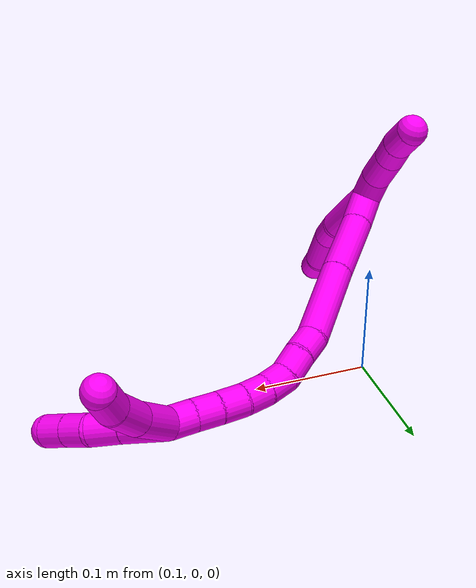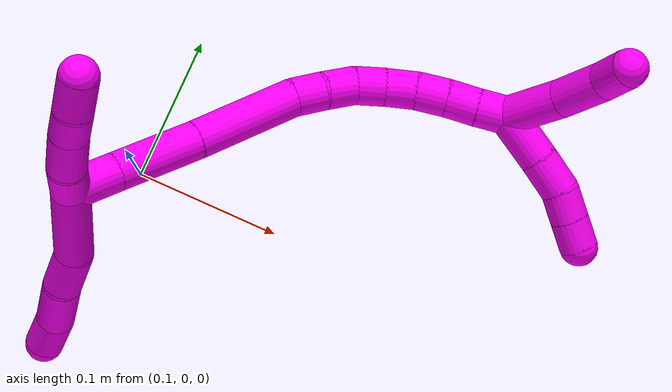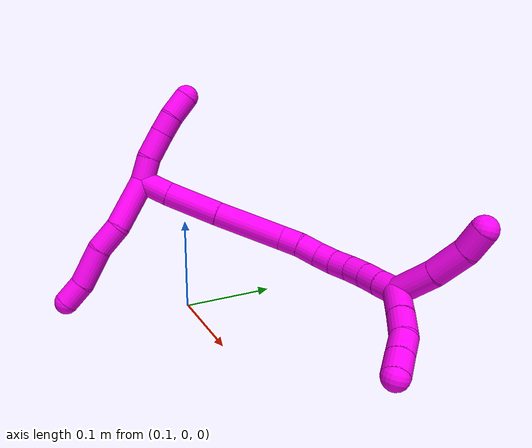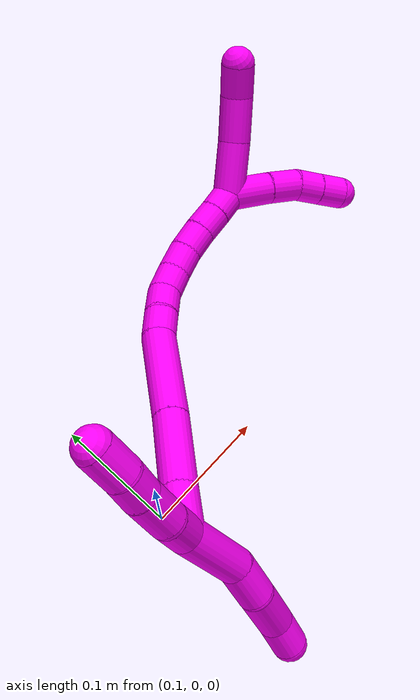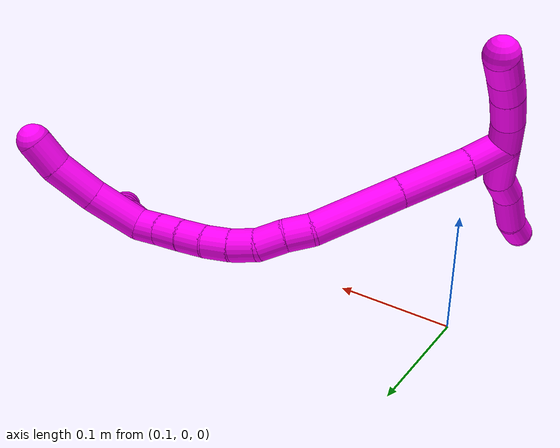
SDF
<sdf version="1.7">
 <world name="default">
  <model name="10">
   <static>0</static>
   <link name="10">
    <collision name="collision-cylinder-e_1_2_8">
     <pose>0.003382 -0.008162 -0.02535 2.8301 0.12632 0.765802</pose>
     <geometry><cylinder><radius>0.0125</radius><length>0.053692</length></cylinder></geometry>
     <surface>
      <friction><ode><mu>1.16</mu><mu2>1.16</mu2><slip1>0</slip1><slip2>0</slip2></ode></friction>
      <contact><ode><kp>1e+06</kp><kd>1</kd><max_vel>0</max_vel><min_depth>0.001</min_depth></ode></contact>
     </surface>
    </collision>
    <visual name="visual-cylinder-e_1_2_8">
     <pose>0.003382 -0.008162 -0.02535 2.8301 0.12632 0.765802</pose>
     <geometry><cylinder><radius>0.0125</radius><length>0.053692</length></cylinder></geometry>
     <material><ambient>1 0 0.964706 1</ambient></material>
    </visual>
    <collision name="collision-cylinder-e_2_8_9">
     <pose>0.004673 -0.022541 -0.063942 2.70263 -0.141992 -0.617229</pose>
     <geometry><cylinder><radius>0.0125</radius><length>0.029554</length></cylinder></geometry>
     <surface>
      <friction><ode><mu>1.16</mu><mu2>1.16</mu2><slip1>0</slip1><slip2>0</slip2></ode></friction>
      <contact><ode><kp>1e+06</kp><kd>1</kd><max_vel>0</max_vel><min_depth>0.001</min_depth></ode></contact>
     </surface>
    </collision>
    <visual name="visual-cylinder-e_2_8_9">
     <pose>0.004673 -0.022541 -0.063942 2.70263 -0.141992 -0.617229</pose>
     <geometry><cylinder><radius>0.0125</radius><length>0.029554</length></cylinder></geometry>
     <material><ambient>1 0 0.964706 1</ambient></material>
    </visual>
    <collision name="collision-cylinder-e_3_9_10">
     <pose>0.00026 -0.032813 -0.097231 2.94201 -0.11305 -1.02879</pose>
     <geometry><cylinder><radius>0.0125</radius><length>0.041171</length></cylinder></geometry>
     <surface>
      <friction><ode><mu>1.16</mu><mu2>1.16</mu2><slip1>0</slip1><slip2>0</slip2></ode></friction>
      <contact><ode><kp>1e+06</kp><kd>1</kd><max_vel>0</max_vel><min_depth>0.001</min_depth></ode></contact>
     </surface>
    </collision>
    <visual name="visual-cylinder-e_3_9_10">
     <pose>0.00026 -0.032813 -0.097231 2.94201 -0.11305 -1.02879</pose>
     <geometry><cylinder><radius>0.0125</radius><length>0.041171</length></cylinder></geometry>
     <material><ambient>1 0 0.964706 1</ambient></material>
    </visual>
    <collision name="collision-cylinder-e_4_10_6">
     <pose>-0.004373 -0.042216 -0.128668 2.70258 -0.181634 -0.775086</pose>
     <geometry><cylinder><radius>0.0125</radius><length>0.025584</length></cylinder></geometry>
     <surface>
      <friction><ode><mu>1.16</mu><mu2>1.16</mu2><slip1>0</slip1><slip2>0</slip2></ode></friction>
      <contact><ode><kp>1e+06</kp><kd>1</kd><max_vel>0</max_vel><min_depth>0.001</min_depth></ode></contact>
     </surface>
    </collision>
    <visual name="visual-cylinder-e_4_10_6">
     <pose>-0.004373 -0.042216 -0.128668 2.70258 -0.181634 -0.775086</pose>
     <geometry><cylinder><radius>0.0125</radius><length>0.025584</length></cylinder></geometry>
     <material><ambient>1 0 0.964706 1</ambient></material>
    </visual>
    <collision name="collision-cylinder-e_1_2_11">
     <pose>-0.000382 0.000632 0.012716 -0.049642 -0.029959 0.000744</pose>
     <geometry><cylinder><radius>0.0125</radius><length>0.025475</length></cylinder></geometry>
     <surface>
      <friction><ode><mu>1.16</mu><mu2>1.16</mu2><slip1>0</slip1><slip2>0</slip2></ode></friction>
      <contact><ode><kp>1e+06</kp><kd>1</kd><max_vel>0</max_vel><min_depth>0.001</min_depth></ode></contact>
     </surface>
    </collision>
    <visual name="visual-cylinder-e_1_2_11">
     <pose>-0.000382 0.000632 0.012716 -0.049642 -0.029959 0.000744</pose>
     <geometry><cylinder><radius>0.0125</radius><length>0.025475</length></cylinder></geometry>
     <material><ambient>1 0 0.964706 1</ambient></material>
    </visual>
    <collision name="collision-cylinder-e_2_11_12">
     <pose>-0.000736 0.005071 0.039483 -0.26466 0.001895 -0.000252</pose>
     <geometry><cylinder><radius>0.0125</radius><length>0.029114</length></cylinder></geometry>
     <surface>
      <friction><ode><mu>1.16</mu><mu2>1.16</mu2><slip1>0</slip1><slip2>0</slip2></ode></friction>
      <contact><ode><kp>1e+06</kp><kd>1</kd><max_vel>0</max_vel><min_depth>0.001</min_depth></ode></contact>
     </surface>
    </collision>
    <visual name="visual-cylinder-e_2_11_12">
     <pose>-0.000736 0.005071 0.039483 -0.26466 0.001895 -0.000252</pose>
     <geometry><cylinder><radius>0.0125</radius><length>0.029114</length></cylinder></geometry>
     <material><ambient>1 0 0.964706 1</ambient></material>
    </visual>
    <collision name="collision-cylinder-e_3_12_13">
     <pose>2.5e-05 0.011674 0.063186 -0.281796 0.072799 -0.01033</pose>
     <geometry><cylinder><radius>0.0125</radius><length>0.020152</length></cylinder></geometry>
     <surface>
      <friction><ode><mu>1.16</mu><mu2>1.16</mu2><slip1>0</slip1><slip2>0</slip2></ode></friction>
      <contact><ode><kp>1e+06</kp><kd>1</kd><max_vel>0</max_vel><min_depth>0.001</min_depth></ode></contact>
     </surface>
    </collision>
    <visual name="visual-cylinder-e_3_12_13">
     <pose>2.5e-05 0.011674 0.063186 -0.281796 0.072799 -0.01033</pose>
     <geometry><cylinder><radius>0.0125</radius><length>0.020152</length></cylinder></geometry>
     <material><ambient>1 0 0.964706 1</ambient></material>
    </visual>
    <collision name="collision-cylinder-e_4_13_5">
     <pose>0.000775 0.019711 0.084329 -0.428034 0.001369 -0.000298</pose>
     <geometry><cylinder><radius>0.0125</radius><length>0.025258</length></cylinder></geometry>
     <surface>
      <friction><ode><mu>1.16</mu><mu2>1.16</mu2><slip1>0</slip1><slip2>0</slip2></ode></friction>
      <contact><ode><kp>1e+06</kp><kd>1</kd><max_vel>0</max_vel><min_depth>0.001</min_depth></ode></contact>
     </surface>
    </collision>
    <visual name="visual-cylinder-e_4_13_5">
     <pose>0.000775 0.019711 0.084329 -0.428034 0.001369 -0.000298</pose>
     <geometry><cylinder><radius>0.0125</radius><length>0.025258</length></cylinder></geometry>
     <material><ambient>1 0 0.964706 1</ambient></material>
    </visual>
    <collision name="collision-cylinder-e_1_2_14">
     <pose>0.008115 0.012909 -0.002928 -1.79383 0.549953 -0.679179</pose>
     <geometry><cylinder><radius>0.0125</radius><length>0.031052</length></cylinder></geometry>
     <surface>
      <friction><ode><mu>1.16</mu><mu2>1.16</mu2><slip1>0</slip1><slip2>0</slip2></ode></friction>
      <contact><ode><kp>1e+06</kp><kd>1</kd><max_vel>0</max_vel><min_depth>0.001</min_depth></ode></contact>
     </surface>
    </collision>
    <visual name="visual-cylinder-e_1_2_14">
     <pose>0.008115 0.012909 -0.002928 -1.79383 0.549953 -0.679179</pose>
     <geometry><cylinder><radius>0.0125</radius><length>0.031052</length></cylinder></geometry>
     <material><ambient>1 0 0.964706 1</ambient></material>
    </visual>
    <collision name="collision-cylinder-e_2_14_15">
     <pose>0.031785 0.048604 -0.009299 -1.72079 0.593763 -0.68336</pose>
     <geometry><cylinder><radius>0.0125</radius><length>0.055608</length></cylinder></geometry>
     <surface>
      <friction><ode><mu>1.16</mu><mu2>1.16</mu2><slip1>0</slip1><slip2>0</slip2></ode></friction>
      <contact><ode><kp>1e+06</kp><kd>1</kd><max_vel>0</max_vel><min_depth>0.001</min_depth></ode></contact>
     </surface>
    </collision>
    <visual name="visual-cylinder-e_2_14_15">
     <pose>0.031785 0.048604 -0.009299 -1.72079 0.593763 -0.68336</pose>
     <geometry><cylinder><radius>0.0125</radius><length>0.055608</length></cylinder></geometry>
     <material><ambient>1 0 0.964706 1</ambient></material>
    </visual>
    <collision name="collision-cylinder-e_3_15_16">
     <pose>0.066291 0.100796 -0.016367 -1.69342 0.569024 -0.638758</pose>
     <geometry><cylinder><radius>0.0125</radius><length>0.070339</length></cylinder></geometry>
     <surface>
      <friction><ode><mu>1.16</mu><mu2>1.16</mu2><slip1>0</slip1><slip2>0</slip2></ode></friction>
      <contact><ode><kp>1e+06</kp><kd>1</kd><max_vel>0</max_vel><min_depth>0.001</min_depth></ode></contact>
     </surface>
    </collision>
    <visual name="visual-cylinder-e_3_15_16">
     <pose>0.066291 0.100796 -0.016367 -1.69342 0.569024 -0.638758</pose>
     <geometry><cylinder><radius>0.0125</radius><length>0.070339</length></cylinder></geometry>
     <material><ambient>1 0 0.964706 1</ambient></material>
    </visual>
    <collision name="collision-cylinder-e_4_16_17">
     <pose>0.092556 0.137253 -0.020783 -1.6827 0.80063 -0.884256</pose>
     <geometry><cylinder><radius>0.0125</radius><length>0.020384</length></cylinder></geometry>
     <surface>
      <friction><ode><mu>1.16</mu><mu2>1.16</mu2><slip1>0</slip1><slip2>0</slip2></ode></friction>
      <contact><ode><kp>1e+06</kp><kd>1</kd><max_vel>0</max_vel><min_depth>0.001</min_depth></ode></contact>
     </surface>
    </collision>
    <visual name="visual-cylinder-e_4_16_17">
     <pose>0.092556 0.137253 -0.020783 -1.6827 0.80063 -0.884256</pose>
     <geometry><cylinder><radius>0.0125</radius><length>0.020384</length></cylinder></geometry>
     <material><ambient>1 0 0.964706 1</ambient></material>
    </visual>
    <collision name="collision-cylinder-e_5_17_18">
     <pose>0.107239 0.151923 -0.023839 -1.8596 0.747558 -0.96798</pose>
     <geometry><cylinder><radius>0.0125</radius><length>0.021672</length></cylinder></geometry>
     <surface>
      <friction><ode><mu>1.16</mu><mu2>1.16</mu2><slip1>0</slip1><slip2>0</slip2></ode></friction>
      <contact><ode><kp>1e+06</kp><kd>1</kd><max_vel>0</max_vel><min_depth>0.001</min_depth></ode></contact>
     </surface>
    </collision>
    <visual name="visual-cylinder-e_5_17_18">
     <pose>0.107239 0.151923 -0.023839 -1.8596 0.747558 -0.96798</pose>
     <geometry><cylinder><radius>0.0125</radius><length>0.021672</length></cylinder></geometry>
     <material><ambient>1 0 0.964706 1</ambient></material>
    </visual>
    <collision name="collision-cylinder-e_6_18_19">
     <pose>0.123541 0.1641 -0.02716 -1.79876 1.08824 -1.30162</pose>
     <geometry><cylinder><radius>0.0125</radius><length>0.020173</length></cylinder></geometry>
     <surface>
      <friction><ode><mu>1.16</mu><mu2>1.16</mu2><slip1>0</slip1><slip2>0</slip2></ode></friction>
      <contact><ode><kp>1e+06</kp><kd>1</kd><max_vel>0</max_vel><min_depth>0.001</min_depth></ode></contact>
     </surface>
    </collision>
    <visual name="visual-cylinder-e_6_18_19">
     <pose>0.123541 0.1641 -0.02716 -1.79876 1.08824 -1.30162</pose>
     <geometry><cylinder><radius>0.0125</radius><length>0.020173</length></cylinder></geometry>
     <material><ambient>1 0 0.964706 1</ambient></material>
    </visual>
    <collision name="collision-cylinder-e_7_19_20">
     <pose>0.141999 0.17217 -0.028385 -1.6184 1.2172 -1.26223</pose>
     <geometry><cylinder><radius>0.0125</radius><length>0.020302</length></cylinder></geometry>
     <surface>
      <friction><ode><mu>1.16</mu><mu2>1.16</mu2><slip1>0</slip1><slip2>0</slip2></ode></friction>
      <contact><ode><kp>1e+06</kp><kd>1</kd><max_vel>0</max_vel><min_depth>0.001</min_depth></ode></contact>
     </surface>
    </collision>
    <visual name="visual-cylinder-e_7_19_20">
     <pose>0.141999 0.17217 -0.028385 -1.6184 1.2172 -1.26223</pose>
     <geometry><cylinder><radius>0.0125</radius><length>0.020302</length></cylinder></geometry>
     <material><ambient>1 0 0.964706 1</ambient></material>
    </visual>
    <collision name="collision-cylinder-e_8_20_21">
     <pose>0.161447 0.177932 -0.028955 -1.74762 1.34439 -1.52021</pose>
     <geometry><cylinder><radius>0.0125</radius><length>0.02037</length></cylinder></geometry>
     <surface>
      <friction><ode><mu>1.16</mu><mu2>1.16</mu2><slip1>0</slip1><slip2>0</slip2></ode></friction>
      <contact><ode><kp>1e+06</kp><kd>1</kd><max_vel>0</max_vel><min_depth>0.001</min_depth></ode></contact>
     </surface>
    </collision>
    <visual name="visual-cylinder-e_8_20_21">
     <pose>0.161447 0.177932 -0.028955 -1.74762 1.34439 -1.52021</pose>
     <geometry><cylinder><radius>0.0125</radius><length>0.02037</length></cylinder></geometry>
     <material><ambient>1 0 0.964706 1</ambient></material>
    </visual>
    <collision name="collision-cylinder-e_9_21_22">
     <pose>0.181239 0.181857 -0.030135 -2.00571 1.38579 -1.83105</pose>
     <geometry><cylinder><radius>0.0125</radius><length>0.020076</length></cylinder></geometry>
     <surface>
      <friction><ode><mu>1.16</mu><mu2>1.16</mu2><slip1>0</slip1><slip2>0</slip2></ode></friction>
      <contact><ode><kp>1e+06</kp><kd>1</kd><max_vel>0</max_vel><min_depth>0.001</min_depth></ode></contact>
     </surface>
    </collision>
    <visual name="visual-cylinder-e_9_21_22">
     <pose>0.181239 0.181857 -0.030135 -2.00571 1.38579 -1.83105</pose>
     <geometry><cylinder><radius>0.0125</radius><length>0.020076</length></cylinder></geometry>
     <material><ambient>1 0 0.964706 1</ambient></material>
    </visual>
    <collision name="collision-cylinder-e_10_22_1">
     <pose>0.20089 0.185565 -0.031508 -1.85551 1.35763 -1.64457</pose>
     <geometry><cylinder><radius>0.0125</radius><length>0.020023</length></cylinder></geometry>
     <surface>
      <friction><ode><mu>1.16</mu><mu2>1.16</mu2><slip1>0</slip1><slip2>0</slip2></ode></friction>
      <contact><ode><kp>1e+06</kp><kd>1</kd><max_vel>0</max_vel><min_depth>0.001</min_depth></ode></contact>
     </surface>
    </collision>
    <visual name="visual-cylinder-e_10_22_1">
     <pose>0.20089 0.185565 -0.031508 -1.85551 1.35763 -1.64457</pose>
     <geometry><cylinder><radius>0.0125</radius><length>0.020023</length></cylinder></geometry>
     <material><ambient>1 0 0.964706 1</ambient></material>
    </visual>
    <collision name="collision-cylinder-e_1_1_23">
     <pose>0.225226 0.193299 -0.018632 -0.400375 0.782777 -0.16708</pose>
     <geometry><cylinder><radius>0.0125</radius><length>0.041264</length></cylinder></geometry>
     <surface>
      <friction><ode><mu>1.16</mu><mu2>1.16</mu2><slip1>0</slip1><slip2>0</slip2></ode></friction>
      <contact><ode><kp>1e+06</kp><kd>1</kd><max_vel>0</max_vel><min_depth>0.001</min_depth></ode></contact>
     </surface>
    </collision>
    <visual name="visual-cylinder-e_1_1_23">
     <pose>0.225226 0.193299 -0.018632 -0.400375 0.782777 -0.16708</pose>
     <geometry><cylinder><radius>0.0125</radius><length>0.041264</length></cylinder></geometry>
     <material><ambient>1 0 0.964706 1</ambient></material>
    </visual>
    <collision name="collision-cylinder-e_2_23_24">
     <pose>0.250501 0.202827 0.007731 -0.288589 0.673174 -0.101597</pose>
     <geometry><cylinder><radius>0.0125</radius><length>0.034401</length></cylinder></geometry>
     <surface>
      <friction><ode><mu>1.16</mu><mu2>1.16</mu2><slip1>0</slip1><slip2>0</slip2></ode></friction>
      <contact><ode><kp>1e+06</kp><kd>1</kd><max_vel>0</max_vel><min_depth>0.001</min_depth></ode></contact>
     </surface>
    </collision>
    <visual name="visual-cylinder-e_2_23_24">
     <pose>0.250501 0.202827 0.007731 -0.288589 0.673174 -0.101597</pose>
     <geometry><cylinder><radius>0.0125</radius><length>0.034401</length></cylinder></geometry>
     <material><ambient>1 0 0.964706 1</ambient></material>
    </visual>
    <collision name="collision-cylinder-e_3_24_4">
     <pose>0.267103 0.20734 0.031254 -0.064387 0.504178 -0.016589</pose>
     <geometry><cylinder><radius>0.0125</radius><length>0.024334</length></cylinder></geometry>
     <surface>
      <friction><ode><mu>1.16</mu><mu2>1.16</mu2><slip1>0</slip1><slip2>0</slip2></ode></friction>
      <contact><ode><kp>1e+06</kp><kd>1</kd><max_vel>0</max_vel><min_depth>0.001</min_depth></ode></contact>
     </surface>
    </collision>
    <visual name="visual-cylinder-e_3_24_4">
     <pose>0.267103 0.20734 0.031254 -0.064387 0.504178 -0.016589</pose>
     <geometry><cylinder><radius>0.0125</radius><length>0.024334</length></cylinder></geometry>
     <material><ambient>1 0 0.964706 1</ambient></material>
    </visual>
    <collision name="collision-cylinder-e_1_1_25">
     <pose>0.224916 0.182008 -0.039708 2.50779 0.985518 2.04497</pose>
     <geometry><cylinder><radius>0.0125</radius><length>0.03417</length></cylinder></geometry>
     <surface>
      <friction><ode><mu>1.16</mu><mu2>1.16</mu2><slip1>0</slip1><slip2>0</slip2></ode></friction>
      <contact><ode><kp>1e+06</kp><kd>1</kd><max_vel>0</max_vel><min_depth>0.001</min_depth></ode></contact>
     </surface>
    </collision>
    <visual name="visual-cylinder-e_1_1_25">
     <pose>0.224916 0.182008 -0.039708 2.50779 0.985518 2.04497</pose>
     <geometry><cylinder><radius>0.0125</radius><length>0.03417</length></cylinder></geometry>
     <material><ambient>1 0 0.964706 1</ambient></material>
    </visual>
    <collision name="collision-cylinder-e_2_25_26">
     <pose>0.249315 0.172384 -0.053617 2.57225 0.935769 2.09179</pose>
     <geometry><cylinder><radius>0.0125</radius><length>0.025233</length></cylinder></geometry>
     <surface>
      <friction><ode><mu>1.16</mu><mu2>1.16</mu2><slip1>0</slip1><slip2>0</slip2></ode></friction>
      <contact><ode><kp>1e+06</kp><kd>1</kd><max_vel>0</max_vel><min_depth>0.001</min_depth></ode></contact>
     </surface>
    </collision>
    <visual name="visual-cylinder-e_2_25_26">
     <pose>0.249315 0.172384 -0.053617 2.57225 0.935769 2.09179</pose>
     <geometry><cylinder><radius>0.0125</radius><length>0.025233</length></cylinder></geometry>
     <material><ambient>1 0 0.964706 1</ambient></material>
    </visual>
    <collision name="collision-cylinder-e_3_26_27">
     <pose>0.265663 0.163541 -0.066173 2.4861 0.665448 1.58703</pose>
     <geometry><cylinder><radius>0.0125</radius><length>0.020054</length></cylinder></geometry>
     <surface>
      <friction><ode><mu>1.16</mu><mu2>1.16</mu2><slip1>0</slip1><slip2>0</slip2></ode></friction>
      <contact><ode><kp>1e+06</kp><kd>1</kd><max_vel>0</max_vel><min_depth>0.001</min_depth></ode></contact>
     </surface>
    </collision>
    <visual name="visual-cylinder-e_3_26_27">
     <pose>0.265663 0.163541 -0.066173 2.4861 0.665448 1.58703</pose>
     <geometry><cylinder><radius>0.0125</radius><length>0.020054</length></cylinder></geometry>
     <material><ambient>1 0 0.964706 1</ambient></material>
    </visual>
    <collision name="collision-cylinder-e_4_27_3">
     <pose>0.278253 0.153941 -0.078874 2.50237 0.672647 1.62558</pose>
     <geometry><cylinder><radius>0.0125</radius><length>0.020542</length></cylinder></geometry>
     <surface>
      <friction><ode><mu>1.16</mu><mu2>1.16</mu2><slip1>0</slip1><slip2>0</slip2></ode></friction>
      <contact><ode><kp>1e+06</kp><kd>1</kd><max_vel>0</max_vel><min_depth>0.001</min_depth></ode></contact>
     </surface>
    </collision>
    <visual name="visual-cylinder-e_4_27_3">
     <pose>0.278253 0.153941 -0.078874 2.50237 0.672647 1.62558</pose>
     <geometry><cylinder><radius>0.0125</radius><length>0.020542</length></cylinder></geometry>
     <material><ambient>1 0 0.964706 1</ambient></material>
    </visual>
    <collision name="collision-sphere-3">
     <pose>0.284653 0.149148 -0.085321 0 -0 0</pose>
     <geometry><sphere><radius>0.0125</radius></sphere></geometry>
     <surface>
      <friction><ode><mu>1.16</mu><mu2>1.16</mu2><slip1>0</slip1><slip2>0</slip2></ode></friction>
      <contact><ode><kp>1e+06</kp><kd>1</kd><max_vel>0</max_vel><min_depth>0.001</min_depth></ode></contact>
     </surface>
    </collision>
    <visual name="visual-sphere-3">
     <pose>0.284653 0.149148 -0.085321 0 -0 0</pose>
     <geometry><sphere><radius>0.0125</radius></sphere></geometry>
     <material><ambient>1 0 0.964706 1</ambient></material>
    </visual>
    <collision name="collision-sphere-27">
     <pose>0.271854 0.158733 -0.072426 0 -0 0</pose>
     <geometry><sphere><radius>0.0125</radius></sphere></geometry>
     <surface>
      <friction><ode><mu>1.16</mu><mu2>1.16</mu2><slip1>0</slip1><slip2>0</slip2></ode></friction>
      <contact><ode><kp>1e+06</kp><kd>1</kd><max_vel>0</max_vel><min_depth>0.001</min_depth></ode></contact>
     </surface>
    </collision>
    <visual name="visual-sphere-27">
     <pose>0.271854 0.158733 -0.072426 0 -0 0</pose>
     <geometry><sphere><radius>0.0125</radius></sphere></geometry>
     <material><ambient>1 0 0.964706 1</ambient></material>
    </visual>
    <collision name="collision-sphere-26">
     <pose>0.259472 0.168349 -0.05992 0 -0 0</pose>
     <geometry><sphere><radius>0.0125</radius></sphere></geometry>
     <surface>
      <friction><ode><mu>1.16</mu><mu2>1.16</mu2><slip1>0</slip1><slip2>0</slip2></ode></friction>
      <contact><ode><kp>1e+06</kp><kd>1</kd><max_vel>0</max_vel><min_depth>0.001</min_depth></ode></contact>
     </surface>
    </collision>
    <visual name="visual-sphere-26">
     <pose>0.259472 0.168349 -0.05992 0 -0 0</pose>
     <geometry><sphere><radius>0.0125</radius></sphere></geometry>
     <material><ambient>1 0 0.964706 1</ambient></material>
    </visual>
    <collision name="collision-sphere-25">
     <pose>0.239158 0.176418 -0.047313 0 -0 0</pose>
     <geometry><sphere><radius>0.0125</radius></sphere></geometry>
     <surface>
      <friction><ode><mu>1.16</mu><mu2>1.16</mu2><slip1>0</slip1><slip2>0</slip2></ode></friction>
      <contact><ode><kp>1e+06</kp><kd>1</kd><max_vel>0</max_vel><min_depth>0.001</min_depth></ode></contact>
     </surface>
    </collision>
    <visual name="visual-sphere-25">
     <pose>0.239158 0.176418 -0.047313 0 -0 0</pose>
     <geometry><sphere><radius>0.0125</radius></sphere></geometry>
     <material><ambient>1 0 0.964706 1</ambient></material>
    </visual>
    <collision name="collision-sphere-4">
     <pose>0.272981 0.208025 0.041885 0 -0 0</pose>
     <geometry><sphere><radius>0.0125</radius></sphere></geometry>
     <surface>
      <friction><ode><mu>1.16</mu><mu2>1.16</mu2><slip1>0</slip1><slip2>0</slip2></ode></friction>
      <contact><ode><kp>1e+06</kp><kd>1</kd><max_vel>0</max_vel><min_depth>0.001</min_depth></ode></contact>
     </surface>
    </collision>
    <visual name="visual-sphere-4">
     <pose>0.272981 0.208025 0.041885 0 -0 0</pose>
     <geometry><sphere><radius>0.0125</radius></sphere></geometry>
     <material><ambient>1 0 0.964706 1</ambient></material>
    </visual>
    <collision name="collision-sphere-24">
     <pose>0.261225 0.206655 0.020623 0 -0 0</pose>
     <geometry><sphere><radius>0.0125</radius></sphere></geometry>
     <surface>
      <friction><ode><mu>1.16</mu><mu2>1.16</mu2><slip1>0</slip1><slip2>0</slip2></ode></friction>
      <contact><ode><kp>1e+06</kp><kd>1</kd><max_vel>0</max_vel><min_depth>0.001</min_depth></ode></contact>
     </surface>
    </collision>
    <visual name="visual-sphere-24">
     <pose>0.261225 0.206655 0.020623 0 -0 0</pose>
     <geometry><sphere><radius>0.0125</radius></sphere></geometry>
     <material><ambient>1 0 0.964706 1</ambient></material>
    </visual>
    <collision name="collision-sphere-23">
     <pose>0.239777 0.199 -0.005161 0 -0 0</pose>
     <geometry><sphere><radius>0.0125</radius></sphere></geometry>
     <surface>
      <friction><ode><mu>1.16</mu><mu2>1.16</mu2><slip1>0</slip1><slip2>0</slip2></ode></friction>
      <contact><ode><kp>1e+06</kp><kd>1</kd><max_vel>0</max_vel><min_depth>0.001</min_depth></ode></contact>
     </surface>
    </collision>
    <visual name="visual-sphere-23">
     <pose>0.239777 0.199 -0.005161 0 -0 0</pose>
     <geometry><sphere><radius>0.0125</radius></sphere></geometry>
     <material><ambient>1 0 0.964706 1</ambient></material>
    </visual>
    <collision name="collision-sphere-1">
     <pose>0.210675 0.187597 -0.032102 0 -0 0</pose>
     <geometry><sphere><radius>0.0125</radius></sphere></geometry>
     <surface>
      <friction><ode><mu>1.16</mu><mu2>1.16</mu2><slip1>0</slip1><slip2>0</slip2></ode></friction>
      <contact><ode><kp>1e+06</kp><kd>1</kd><max_vel>0</max_vel><min_depth>0.001</min_depth></ode></contact>
     </surface>
    </collision>
    <visual name="visual-sphere-1">
     <pose>0.210675 0.187597 -0.032102 0 -0 0</pose>
     <geometry><sphere><radius>0.0125</radius></sphere></geometry>
     <material><ambient>1 0 0.964706 1</ambient></material>
    </visual>
    <collision name="collision-sphere-22">
     <pose>0.191105 0.183532 -0.030913 0 -0 0</pose>
     <geometry><sphere><radius>0.0125</radius></sphere></geometry>
     <surface>
      <friction><ode><mu>1.16</mu><mu2>1.16</mu2><slip1>0</slip1><slip2>0</slip2></ode></friction>
      <contact><ode><kp>1e+06</kp><kd>1</kd><max_vel>0</max_vel><min_depth>0.001</min_depth></ode></contact>
     </surface>
    </collision>
    <visual name="visual-sphere-22">
     <pose>0.191105 0.183532 -0.030913 0 -0 0</pose>
     <geometry><sphere><radius>0.0125</radius></sphere></geometry>
     <material><ambient>1 0 0.964706 1</ambient></material>
    </visual>
    <collision name="collision-sphere-21">
     <pose>0.171372 0.180183 -0.029357 0 -0 0</pose>
     <geometry><sphere><radius>0.0125</radius></sphere></geometry>
     <surface>
      <friction><ode><mu>1.16</mu><mu2>1.16</mu2><slip1>0</slip1><slip2>0</slip2></ode></friction>
      <contact><ode><kp>1e+06</kp><kd>1</kd><max_vel>0</max_vel><min_depth>0.001</min_depth></ode></contact>
     </surface>
    </collision>
    <visual name="visual-sphere-21">
     <pose>0.171372 0.180183 -0.029357 0 -0 0</pose>
     <geometry><sphere><radius>0.0125</radius></sphere></geometry>
     <material><ambient>1 0 0.964706 1</ambient></material>
    </visual>
    <collision name="collision-sphere-11">
     <pose>-0.000763 0.001264 0.025432 0 -0 0</pose>
     <geometry><sphere><radius>0.0125</radius></sphere></geometry>
     <surface>
      <friction><ode><mu>1.16</mu><mu2>1.16</mu2><slip1>0</slip1><slip2>0</slip2></ode></friction>
      <contact><ode><kp>1e+06</kp><kd>1</kd><max_vel>0</max_vel><min_depth>0.001</min_depth></ode></contact>
     </surface>
    </collision>
    <visual name="visual-sphere-11">
     <pose>-0.000763 0.001264 0.025432 0 -0 0</pose>
     <geometry><sphere><radius>0.0125</radius></sphere></geometry>
     <material><ambient>1 0 0.964706 1</ambient></material>
    </visual>
    <collision name="collision-sphere-6">
     <pose>-0.006684 -0.047564 -0.140056 0 -0 0</pose>
     <geometry><sphere><radius>0.0125</radius></sphere></geometry>
     <surface>
      <friction><ode><mu>1.16</mu><mu2>1.16</mu2><slip1>0</slip1><slip2>0</slip2></ode></friction>
      <contact><ode><kp>1e+06</kp><kd>1</kd><max_vel>0</max_vel><min_depth>0.001</min_depth></ode></contact>
     </surface>
    </collision>
    <visual name="visual-sphere-6">
     <pose>-0.006684 -0.047564 -0.140056 0 -0 0</pose>
     <geometry><sphere><radius>0.0125</radius></sphere></geometry>
     <material><ambient>1 0 0.964706 1</ambient></material>
    </visual>
    <collision name="collision-sphere-10">
     <pose>-0.002062 -0.036869 -0.117279 0 -0 0</pose>
     <geometry><sphere><radius>0.0125</radius></sphere></geometry>
     <surface>
      <friction><ode><mu>1.16</mu><mu2>1.16</mu2><slip1>0</slip1><slip2>0</slip2></ode></friction>
      <contact><ode><kp>1e+06</kp><kd>1</kd><max_vel>0</max_vel><min_depth>0.001</min_depth></ode></contact>
     </surface>
    </collision>
    <visual name="visual-sphere-10">
     <pose>-0.002062 -0.036869 -0.117279 0 -0 0</pose>
     <geometry><sphere><radius>0.0125</radius></sphere></geometry>
     <material><ambient>1 0 0.964706 1</ambient></material>
    </visual>
    <collision name="collision-sphere-9">
     <pose>0.002582 -0.028758 -0.077183 0 -0 0</pose>
     <geometry><sphere><radius>0.0125</radius></sphere></geometry>
     <surface>
      <friction><ode><mu>1.16</mu><mu2>1.16</mu2><slip1>0</slip1><slip2>0</slip2></ode></friction>
      <contact><ode><kp>1e+06</kp><kd>1</kd><max_vel>0</max_vel><min_depth>0.001</min_depth></ode></contact>
     </surface>
    </collision>
    <visual name="visual-sphere-9">
     <pose>0.002582 -0.028758 -0.077183 0 -0 0</pose>
     <geometry><sphere><radius>0.0125</radius></sphere></geometry>
     <material><ambient>1 0 0.964706 1</ambient></material>
    </visual>
    <collision name="collision-sphere-2">
     <geometry><sphere><radius>0.0125</radius></sphere></geometry>
     <surface>
      <friction><ode><mu>1.16</mu><mu2>1.16</mu2><slip1>0</slip1><slip2>0</slip2></ode></friction>
      <contact><ode><kp>1e+06</kp><kd>1</kd><max_vel>0</max_vel><min_depth>0.001</min_depth></ode></contact>
     </surface>
    </collision>
    <visual name="visual-sphere-2">
     <geometry><sphere><radius>0.0125</radius></sphere></geometry>
     <material><ambient>1 0 0.964706 1</ambient></material>
    </visual>
    <collision name="collision-sphere-19">
     <pose>0.132476 0.168659 -0.028218 0 -0 0</pose>
     <geometry><sphere><radius>0.0125</radius></sphere></geometry>
     <surface>
      <friction><ode><mu>1.16</mu><mu2>1.16</mu2><slip1>0</slip1><slip2>0</slip2></ode></friction>
      <contact><ode><kp>1e+06</kp><kd>1</kd><max_vel>0</max_vel><min_depth>0.001</min_depth></ode></contact>
     </surface>
    </collision>
    <visual name="visual-sphere-19">
     <pose>0.132476 0.168659 -0.028218 0 -0 0</pose>
     <geometry><sphere><radius>0.0125</radius></sphere></geometry>
     <material><ambient>1 0 0.964706 1</ambient></material>
    </visual>
    <collision name="collision-sphere-8">
     <pose>0.006764 -0.016324 -0.050701 0 -0 0</pose>
     <geometry><sphere><radius>0.0125</radius></sphere></geometry>
     <surface>
      <friction><ode><mu>1.16</mu><mu2>1.16</mu2><slip1>0</slip1><slip2>0</slip2></ode></friction>
      <contact><ode><kp>1e+06</kp><kd>1</kd><max_vel>0</max_vel><min_depth>0.001</min_depth></ode></contact>
     </surface>
    </collision>
    <visual name="visual-sphere-8">
     <pose>0.006764 -0.016324 -0.050701 0 -0 0</pose>
     <geometry><sphere><radius>0.0125</radius></sphere></geometry>
     <material><ambient>1 0 0.964706 1</ambient></material>
    </visual>
    <collision name="collision-sphere-12">
     <pose>-0.000708 0.008879 0.053533 0 -0 0</pose>
     <geometry><sphere><radius>0.0125</radius></sphere></geometry>
     <surface>
      <friction><ode><mu>1.16</mu><mu2>1.16</mu2><slip1>0</slip1><slip2>0</slip2></ode></friction>
      <contact><ode><kp>1e+06</kp><kd>1</kd><max_vel>0</max_vel><min_depth>0.001</min_depth></ode></contact>
     </surface>
    </collision>
    <visual name="visual-sphere-12">
     <pose>-0.000708 0.008879 0.053533 0 -0 0</pose>
     <geometry><sphere><radius>0.0125</radius></sphere></geometry>
     <material><ambient>1 0 0.964706 1</ambient></material>
    </visual>
    <collision name="collision-sphere-13">
     <pose>0.000758 0.014468 0.072839 0 -0 0</pose>
     <geometry><sphere><radius>0.0125</radius></sphere></geometry>
     <surface>
      <friction><ode><mu>1.16</mu><mu2>1.16</mu2><slip1>0</slip1><slip2>0</slip2></ode></friction>
      <contact><ode><kp>1e+06</kp><kd>1</kd><max_vel>0</max_vel><min_depth>0.001</min_depth></ode></contact>
     </surface>
    </collision>
    <visual name="visual-sphere-13">
     <pose>0.000758 0.014468 0.072839 0 -0 0</pose>
     <geometry><sphere><radius>0.0125</radius></sphere></geometry>
     <material><ambient>1 0 0.964706 1</ambient></material>
    </visual>
    <collision name="collision-sphere-5">
     <pose>0.000792 0.024953 0.095819 0 -0 0</pose>
     <geometry><sphere><radius>0.0125</radius></sphere></geometry>
     <surface>
      <friction><ode><mu>1.16</mu><mu2>1.16</mu2><slip1>0</slip1><slip2>0</slip2></ode></friction>
      <contact><ode><kp>1e+06</kp><kd>1</kd><max_vel>0</max_vel><min_depth>0.001</min_depth></ode></contact>
     </surface>
    </collision>
    <visual name="visual-sphere-5">
     <pose>0.000792 0.024953 0.095819 0 -0 0</pose>
     <geometry><sphere><radius>0.0125</radius></sphere></geometry>
     <material><ambient>1 0 0.964706 1</ambient></material>
    </visual>
    <collision name="collision-sphere-14">
     <pose>0.016229 0.025818 -0.005856 0 -0 0</pose>
     <geometry><sphere><radius>0.0125</radius></sphere></geometry>
     <surface>
      <friction><ode><mu>1.16</mu><mu2>1.16</mu2><slip1>0</slip1><slip2>0</slip2></ode></friction>
      <contact><ode><kp>1e+06</kp><kd>1</kd><max_vel>0</max_vel><min_depth>0.001</min_depth></ode></contact>
     </surface>
    </collision>
    <visual name="visual-sphere-14">
     <pose>0.016229 0.025818 -0.005856 0 -0 0</pose>
     <geometry><sphere><radius>0.0125</radius></sphere></geometry>
     <material><ambient>1 0 0.964706 1</ambient></material>
    </visual>
    <collision name="collision-sphere-15">
     <pose>0.047341 0.07139 -0.012743 0 -0 0</pose>
     <geometry><sphere><radius>0.0125</radius></sphere></geometry>
     <surface>
      <friction><ode><mu>1.16</mu><mu2>1.16</mu2><slip1>0</slip1><slip2>0</slip2></ode></friction>
      <contact><ode><kp>1e+06</kp><kd>1</kd><max_vel>0</max_vel><min_depth>0.001</min_depth></ode></contact>
     </surface>
    </collision>
    <visual name="visual-sphere-15">
     <pose>0.047341 0.07139 -0.012743 0 -0 0</pose>
     <geometry><sphere><radius>0.0125</radius></sphere></geometry>
     <material><ambient>1 0 0.964706 1</ambient></material>
    </visual>
    <collision name="collision-sphere-16">
     <pose>0.085241 0.130201 -0.019991 0 -0 0</pose>
     <geometry><sphere><radius>0.0125</radius></sphere></geometry>
     <surface>
      <friction><ode><mu>1.16</mu><mu2>1.16</mu2><slip1>0</slip1><slip2>0</slip2></ode></friction>
      <contact><ode><kp>1e+06</kp><kd>1</kd><max_vel>0</max_vel><min_depth>0.001</min_depth></ode></contact>
     </surface>
    </collision>
    <visual name="visual-sphere-16">
     <pose>0.085241 0.130201 -0.019991 0 -0 0</pose>
     <geometry><sphere><radius>0.0125</radius></sphere></geometry>
     <material><ambient>1 0 0.964706 1</ambient></material>
    </visual>
    <collision name="collision-sphere-17">
     <pose>0.099872 0.144305 -0.021576 0 -0 0</pose>
     <geometry><sphere><radius>0.0125</radius></sphere></geometry>
     <surface>
      <friction><ode><mu>1.16</mu><mu2>1.16</mu2><slip1>0</slip1><slip2>0</slip2></ode></friction>
      <contact><ode><kp>1e+06</kp><kd>1</kd><max_vel>0</max_vel><min_depth>0.001</min_depth></ode></contact>
     </surface>
    </collision>
    <visual name="visual-sphere-17">
     <pose>0.099872 0.144305 -0.021576 0 -0 0</pose>
     <geometry><sphere><radius>0.0125</radius></sphere></geometry>
     <material><ambient>1 0 0.964706 1</ambient></material>
    </visual>
    <collision name="collision-sphere-18">
     <pose>0.114606 0.15954 -0.026102 0 -0 0</pose>
     <geometry><sphere><radius>0.0125</radius></sphere></geometry>
     <surface>
      <friction><ode><mu>1.16</mu><mu2>1.16</mu2><slip1>0</slip1><slip2>0</slip2></ode></friction>
      <contact><ode><kp>1e+06</kp><kd>1</kd><max_vel>0</max_vel><min_depth>0.001</min_depth></ode></contact>
     </surface>
    </collision>
    <visual name="visual-sphere-18">
     <pose>0.114606 0.15954 -0.026102 0 -0 0</pose>
     <geometry><sphere><radius>0.0125</radius></sphere></geometry>
     <material><ambient>1 0 0.964706 1</ambient></material>
    </visual>
    <collision name="collision-sphere-20">
     <pose>0.151522 0.175681 -0.028552 0 -0 0</pose>
     <geometry><sphere><radius>0.0125</radius></sphere></geometry>
     <surface>
      <friction><ode><mu>1.16</mu><mu2>1.16</mu2><slip1>0</slip1><slip2>0</slip2></ode></friction>
      <contact><ode><kp>1e+06</kp><kd>1</kd><max_vel>0</max_vel><min_depth>0.001</min_depth></ode></contact>
     </surface>
    </collision>
    <visual name="visual-sphere-20">
     <pose>0.151522 0.175681 -0.028552 0 -0 0</pose>
     <geometry><sphere><radius>0.0125</radius></sphere></geometry>
     <material><ambient>1 0 0.964706 1</ambient></material>
    </visual>
    <inertial>
     <pose>0.102475 0.09127 -0.02229 0 -0 0</pose>
     <mass>0.75</mass>
     <inertia><ixx>7.4e-05</ixx><ixy>0</ixy><ixz>0</ixz><iyy>1.8e-05</iyy><iyz>0</iyz><izz>-0.0001</izz></inertia>
    </inertial>
   </link>
   <pose>0.087635 -0.04086 0.146981 -0.32301 -0.124911 -0.022093</pose>
  </model>
 </world>
</sdf>
